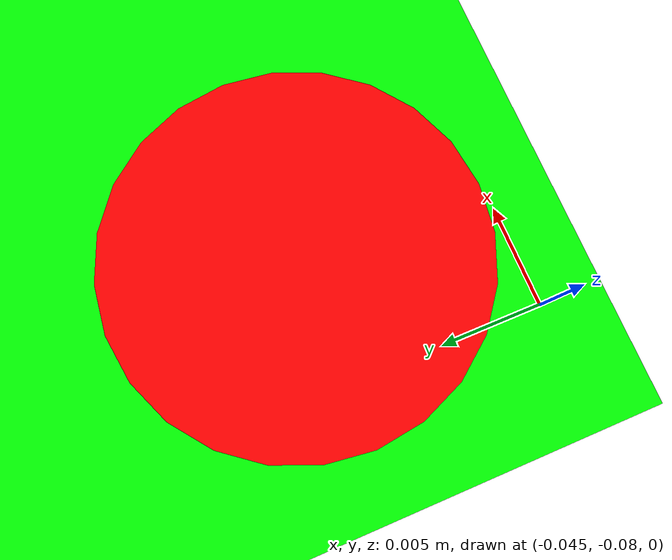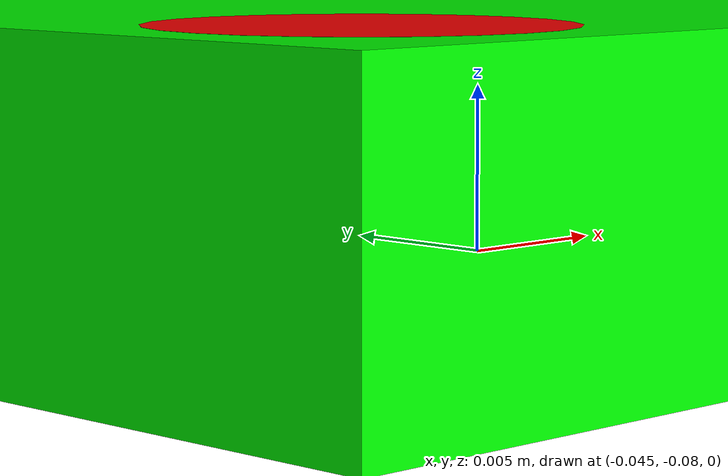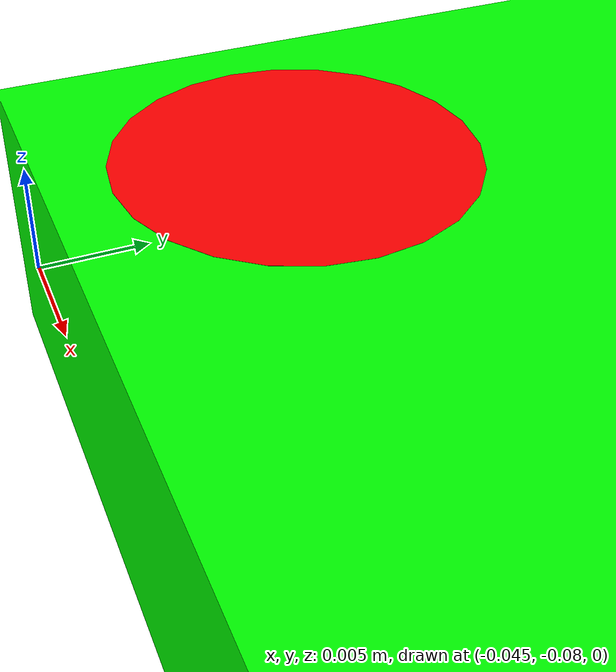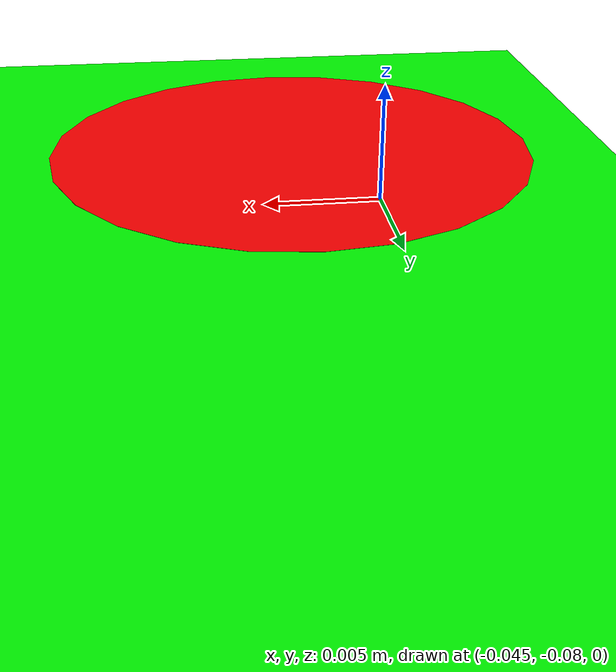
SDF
<?xml version='1.0'?>
<sdf version='1.6'>
  <model name='Rectangle'>
    <link name='rectangle_link_0'>
      <inertial>
        <mass>10</mass>
        <inertia>
          <ixx>0.166667</ixx>
          <ixy>0</ixy>
          <ixz>0</ixz>
          <iyy>0.166667</iyy>
          <iyz>0</iyz>
          <izz>0.166667</izz>
        </inertia>
        <pose frame=''>0 0 0 0 -0 0</pose>
      </inertial>
      <pose frame=''>0.0 0.0 0 0 0 -1.57</pose>
      <gravity>1</gravity>
      <self_collide>0</self_collide>
      <kinematic>0</kinematic>
      <enable_wind>0</enable_wind>
      <visual name='visual'>
        <pose frame=''>0 0 0 0 -0 0</pose>
        <geometry>
          <mesh>
            <uri>model://Rectangle/Rectangle.stl</uri>
            <scale>1 1 0.5</scale>
          </mesh>
        </geometry>
        <material>
          <lighting>1</lighting>
          <script>
            <uri>file://media/materials/scripts/gazebo.material</uri>
            <name>Gazebo/Grey</name>
          </script>
          <ambient>0 1 0 0</ambient>
          <shader type='vertex'>
            <normal_map>__default__</normal_map>
          </shader>
          <diffuse>0.7 0.7 0.7 1</diffuse>
          <specular>0.01 0.01 0.01 1</specular>
          <emissive>0 0 0 1</emissive>
        </material>
        <transparency>0</transparency>
        <cast_shadows>1</cast_shadows>
      </visual>
      <collision name='collision'>
        <laser_retro>0</laser_retro>
        <max_contacts>10</max_contacts>
        <pose frame=''>0 0 0 0 -0 0</pose>
        <geometry>
          <mesh>
            <uri>model://Rectangle/Rectangle.stl</uri>
            <scale>0.95 0.95 0.5</scale>
          </mesh>
        </geometry>
        <surface>
          <friction>
            <ode>
              <mu>0.01</mu>
              <mu2>0.01</mu2>
              <fdir1>0 0 0</fdir1>
              <slip1>0</slip1>
              <slip2>0</slip2>
            </ode>
            <torsional>
              <coefficient>1</coefficient>
              <patch_radius>0</patch_radius>
              <surface_radius>0</surface_radius>
              <use_patch_radius>1</use_patch_radius>
              <ode>
                <slip>0</slip>
              </ode>
            </torsional>
          </friction>
          <bounce>
            <restitution_coefficient>0</restitution_coefficient>
            <threshold>1e+06</threshold>
          </bounce>
          <contact>
            <collide_without_contact>0</collide_without_contact>
            <collide_without_contact_bitmask>1</collide_without_contact_bitmask>
            <collide_bitmask>1</collide_bitmask>
            <ode>
              <soft_cfm>0</soft_cfm>
              <soft_erp>0.2</soft_erp>
              <kp>1e+13</kp>
              <kd>1</kd>
              <max_vel>0.01</max_vel>
              <min_depth>0</min_depth>
            </ode>
            <bullet>
              <split_impulse>1</split_impulse>
              <split_impulse_penetration_threshold>-0.01</split_impulse_penetration_threshold>
              <soft_cfm>0</soft_cfm>
              <soft_erp>0.2</soft_erp>
              <kp>1e+13</kp>
              <kd>1</kd>
            </bullet>
          </contact>
        </surface>
      </collision>
    </link>
    <link name='rectangle_link_1'>
      <inertial>
        <mass>0.0001</mass>
        <inertia>
          <ixx>0.145833</ixx>
          <ixy>0</ixy>
          <ixz>0</ixz>
          <iyy>0.145833</iyy>
          <iyz>0</iyz>
          <izz>0.125</izz>
        </inertia>
        <pose frame=''>0 0 0 0 -0 0</pose>
      </inertial>
      <pose frame=''>-0.04 -0.07 0 0 -0 0</pose>
      <gravity>1</gravity>
      <self_collide>0</self_collide>
      <kinematic>0</kinematic>
      <enable_wind>0</enable_wind>
      <visual name='visual'>
        <pose frame=''>0 0 0 0 -0 0</pose>
        <geometry>
          <cylinder>
            <radius>0.0075</radius>
            <length>0.01251</length>
          </cylinder>
        </geometry>
        <material>
          <lighting>1</lighting>
          <script>
            <uri>file://media/materials/scripts/gazebo.material</uri>
            <name>Gazebo/Grey</name>
          </script>
          <shader type='vertex'>
            <normal_map>__default__</normal_map>
          </shader>
          <ambient>1 0 0 1</ambient>
          <diffuse>0.7 0.7 0.7 1</diffuse>
          <specular>0.01 0.01 0.01 1</specular>
          <emissive>0 0 0 1</emissive>
        </material>
        <transparency>0</transparency>
        <cast_shadows>1</cast_shadows>
      </visual>
    </link>
    <joint name='rectangle_link_0_JOINT_0' type='fixed'>
      <parent>rectangle_link_0</parent>
      <child>rectangle_link_1</child>
      <pose frame=''>0 0 0 0 -0 0</pose>
      <physics>
        <ode>
          <limit>
            <cfm>0</cfm>
            <erp>0.2</erp>
          </limit>
          <suspension>
            <cfm>0</cfm>
            <erp>0.2</erp>
          </suspension>
        </ode>
      </physics>
    </joint>
    <static>0</static>
    <allow_auto_disable>1</allow_auto_disable>
  </model>
</sdf>
